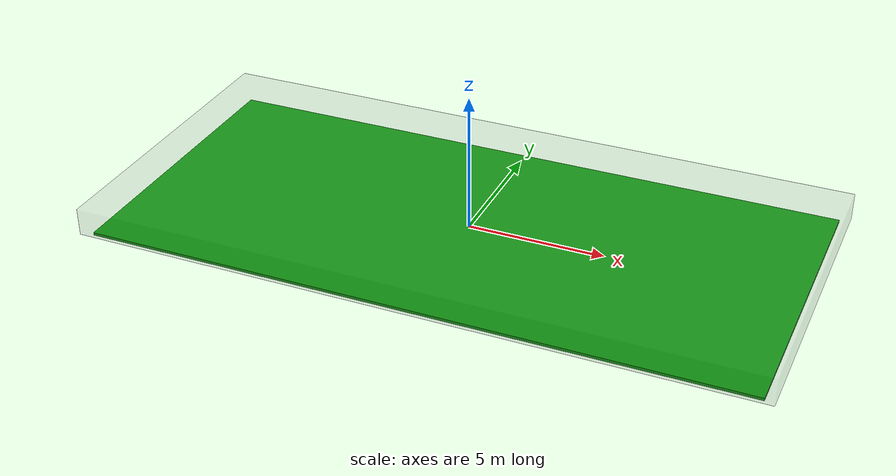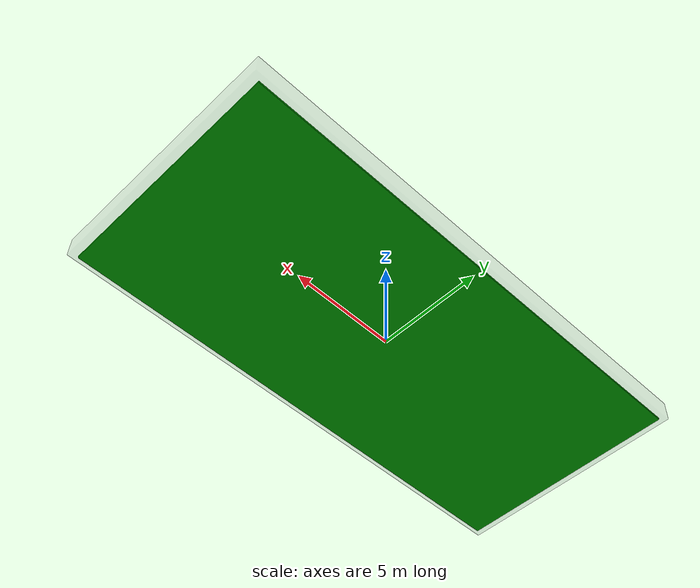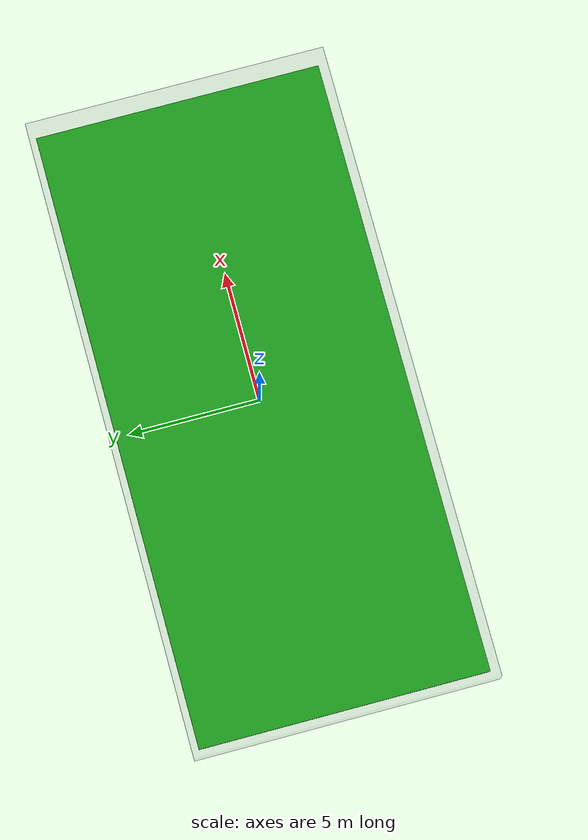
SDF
<?xml version="1.0" ?>
<sdf version="1.6">
  <model name="tennis_court">
    <static>true</static>

    # ground
    <link name="court_ground">
      <collision name="court_collision">
        <geometry>
          <box>
            <size>23.77 10.97 0.1</size>
          </box>
        </geometry>
        <surface>
          <friction>
            <ode>
              <mu>1.0</mu>
              <mu2>1.0</mu2>
            </ode>
          </friction>
        </surface>
      </collision>
      <visual name="court_visual">
        <geometry>
          <box>
            <size>23.77 10.97 0.1</size>
          </box>
        </geometry>
        <material>
          <ambient>0.0 0.5 0.0 1</ambient>
          <diffuse>0.0 0.6 0.0 1</diffuse>
          <specular>0.1 0.1 0.1 1</specular>
        </material>
      </visual>
      <pose>0 0 -0.05 0 0 0</pose>
    </link>

    <!-- walls -->
    <link name="court_walls">
      <collision name="wall_collision">
        <geometry>
          <box>
            <size>24.5 11.5 1.0</size>
          </box>
        </geometry>
      </collision>
      <visual name="wall_visual">
        <geometry>
          <box>
            <size>24.5 11.5 1.0</size>
          </box>
        </geometry>
        <material>
          <ambient>0.5 0.5 0.5 0.2</ambient>
          <diffuse>0.5 0.5 0.5 0.2</diffuse>
        </material>
      </visual>
      <pose>0 0 0.5 0 0 0</pose>
    </link>

    <!-- nets -->
    <link name="net">
      <collision name="net_collision">
        <geometry>
          <box>
            <size>0.05 10.97 0.91</size>
          </box>
        </geometry>
      </collision>
      <visual name="net_visual">
        <geometry>
          <box>
            <size>0.05 10.97 0.91</size>
          </box>
        </geometry>
        <material>
          <ambient>0.8 0.8 0.8 0.6</ambient>
          <diffuse>0.8 0.8 0.8 0.6</diffuse>
        </material>
      </visual>
      <pose>0 0 0.45 0 0 0</pose>
    </link>

  </model>
</sdf>
